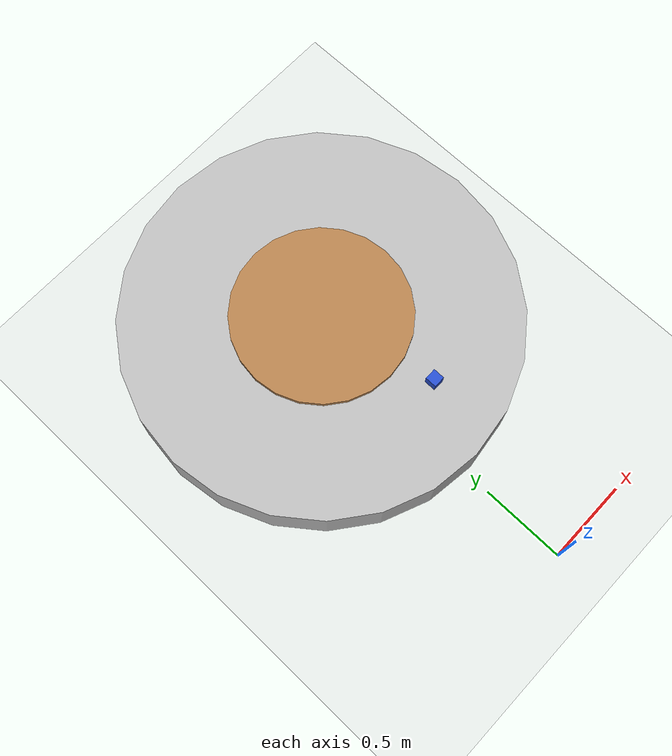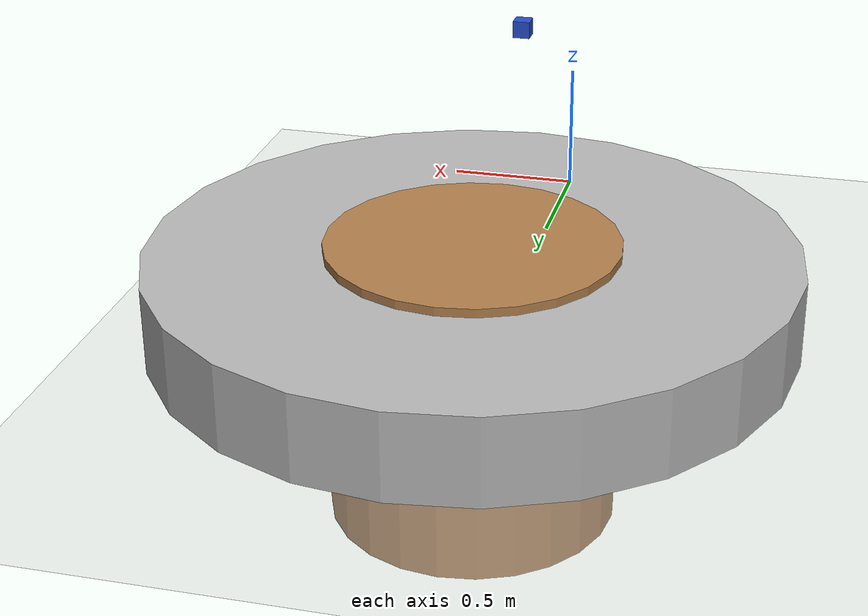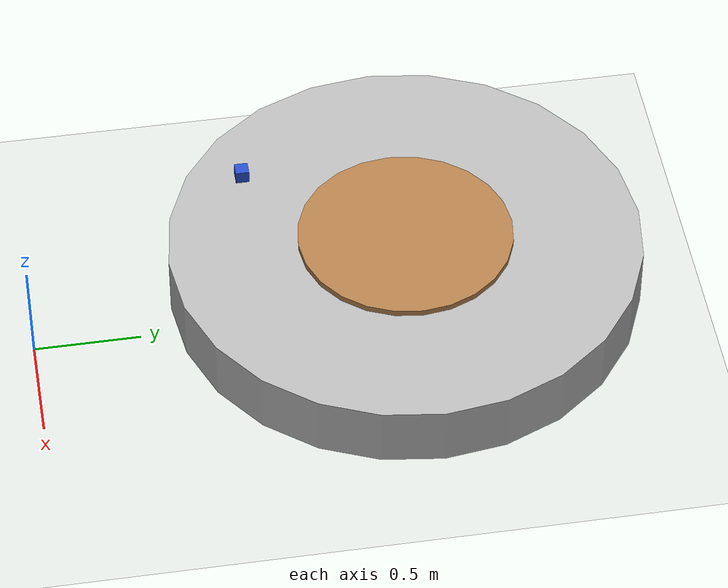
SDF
<?xml version="1.0" ?>
<sdf version="1.6">

    <world name="eco_world">

        <include>
            <uri>model://ground_plane</uri>
        </include>

        <include>
            <uri>model://sun</uri>
        </include>

        <include>
            <uri>model://demo_object</uri>
            <pose>0 1. 1 0 0 0 </pose>
        </include>

        <model name='Rot_table'>
            <link name='link_0'>
                <inertial>
                    <mass>100</mass>
                    <inertia>
                    <ixx>14.583333333</ixx>
                    <ixy>0</ixy>
                    <ixz>0</ixz>
                    <iyy>14.583333333</iyy>
                    <iyz>0</iyz>
                    <izz>12.5</izz>
                    </inertia>
                </inertial>
                <pose>0 0 0 0 0 0</pose>

                <visual name='visual'>
                    <pose>0 0 0 0 0 0</pose>
                    <geometry>
                        <cylinder>
                            <radius>0.5</radius>
                            <length>1</length>
                        </cylinder>
                    </geometry>
                    <material>
                        <script>
                            <uri>file://media/materials/scripts/gazebo.material</uri>
                            <name>Gazebo/Wood</name>
                        </script>
                    </material>
                </visual>

                <collision name='collision'>
                    <pose>0 0 0 0 0 0</pose>
                    <geometry>
                    <cylinder>
                        <radius>0.5</radius>
                        <length>1</length>
                    </cylinder>
                    </geometry>
                </collision>
                <static>1</static>
            </link>

            <link name='link_1'>
                <inertial>
                    <mass>4</mass>
                    <inertia>
                    <ixx>1.5172</ixx>
                    <ixy>0</ixy>
                    <ixz>0</ixz>
                    <iyy>1.5172</iyy>
                    <iyz>0</iyz>
                    <izz>2.42</izz>
                    </inertia>
                </inertial>
                <pose>0 0 0. 0 0 0</pose>

                <visual name='visual'>
                    <pose>0 0 0.32 0 -0 0</pose>
                    <geometry>
                    <cylinder>
                        <radius>1.1</radius>
                        <length>0.3</length>
                    </cylinder>
                    </geometry>
                    <material>
                        <script>Gazebo/White</script>
                    </material>
                </visual>

                <collision name='collision'>
                    <pose>0 0 0. 0 0 0</pose>
                    <geometry>
                    <cylinder>
                        <radius>1.1</radius>
                        <length>0.96</length>
                    </cylinder>
                    </geometry>
                </collision>
            </link>

            <joint name='joint_rot' type='revolute'>
                <parent>link_0</parent>
                <child>link_1</child>
                <pose>0 0 0. 0 0 0</pose>
                <axis>
                    <xyz>0 0 1</xyz>
                </axis>
            </joint>
            <pose>0 1.75 0 0 0 0</pose>

        </model>
    </world>
</sdf>

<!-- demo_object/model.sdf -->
<sdf version='1.4'>
  <model name="demo_object">
      <static>0</static>
      <link name='link'>
        <inertial>
          <mass>0.25</mass>
          <inertia>
            <ixx>0.00015</ixx>
            <ixy>0.000000</ixy>
            <ixz>0.000000</ixz>
            <iyy>0.00015</iyy>
            <iyz>0.000000</iyz>
            <izz>0.00015</izz>
          </inertia>
        </inertial>
        <collision name='collision'>
          <geometry>
            <box>
              <size>0.060 0.060 0.060</size>
            </box>
          </geometry>
          <surface>
            <friction>
              <ode>
                <mu>30.0</mu>
                <mu2>30.0</mu2>
              </ode>
            </friction>
            <contact>
              <ode>
                <kp>1000000.0</kp>
                <kd>100.0</kd>
                <max_vel>1.0</max_vel>
                <min_depth>0.002</min_depth>
              </ode>
            </contact>
          </surface>
        </collision>
        <visual name='visual'>
          <geometry>
            <box>
              <size>0.060 0.060 0.060</size>
            </box>
          </geometry>
          <material>
            <script>
              <uri>file://media/materials/scripts/gazebo.material</uri>
              <name>Gazebo/Blue</name>
            </script>
          </material>
        </visual>
        <velocity_decay>
          <linear>0.000000</linear>
          <angular>0.000000</angular>
        </velocity_decay>
        <self_collide>0</self_collide>
        <kinematic>0</kinematic>
        <gravity>1</gravity>
      </link>
  </model>
</sdf>
